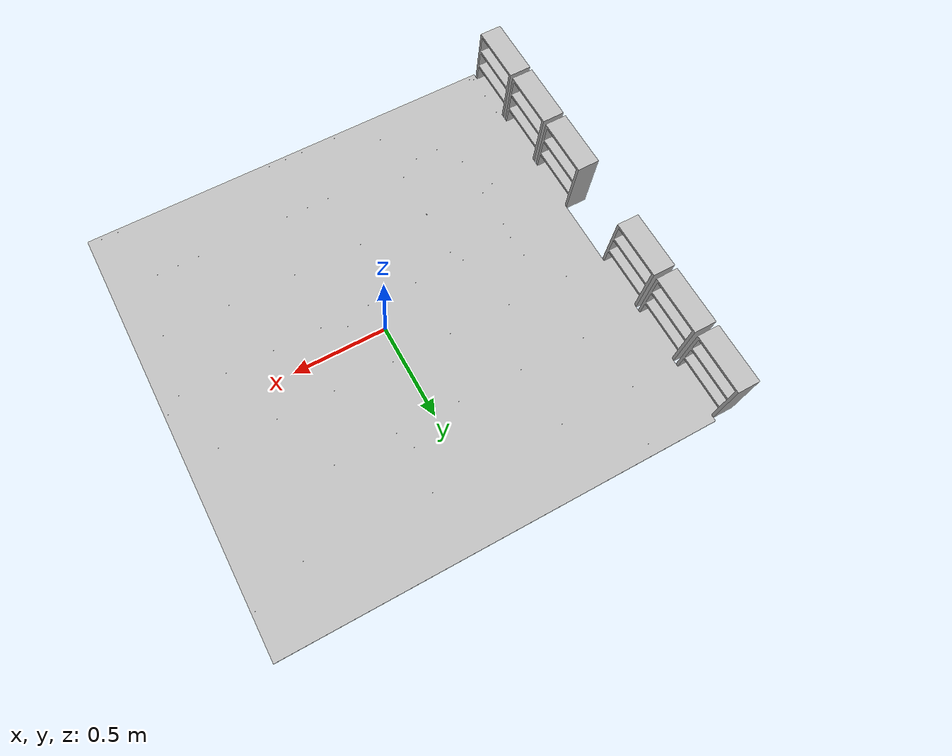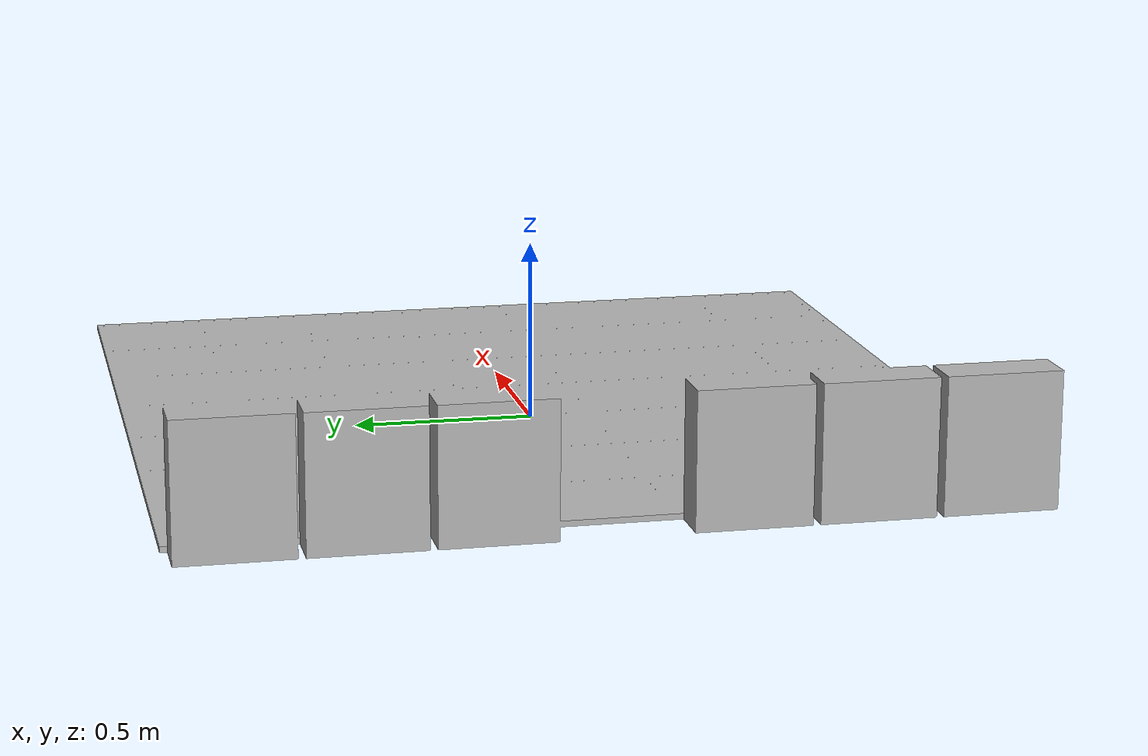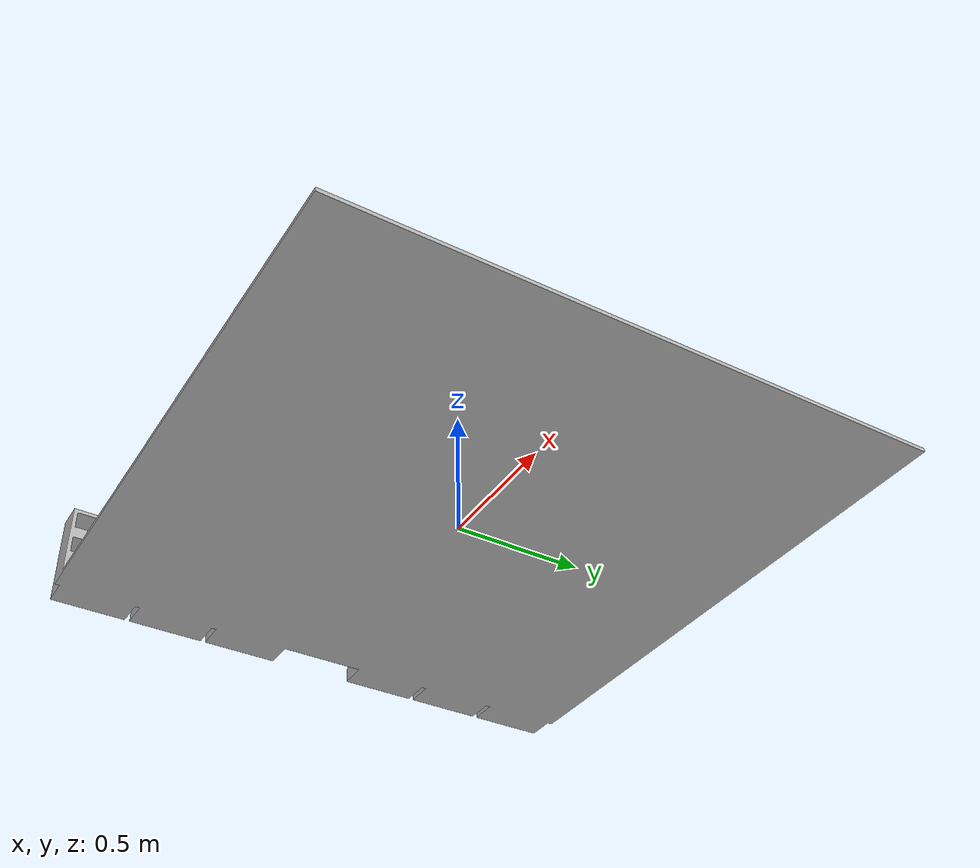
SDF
<?xml version="1.0"?>
<sdf version="1.7">
    <model name="field">
      <pose>0 0 0.05  0 0 0</pose>
      <static>true</static>
      <link name="body">

        <visual name="visual">
          <geometry>
            <mesh>
              <uri>model://field/meshes/pista2.stl</uri>
              <scale>1 1 1</scale>
            </mesh>
          </geometry>
        </visual>

      </link>
    </model>
</sdf>
